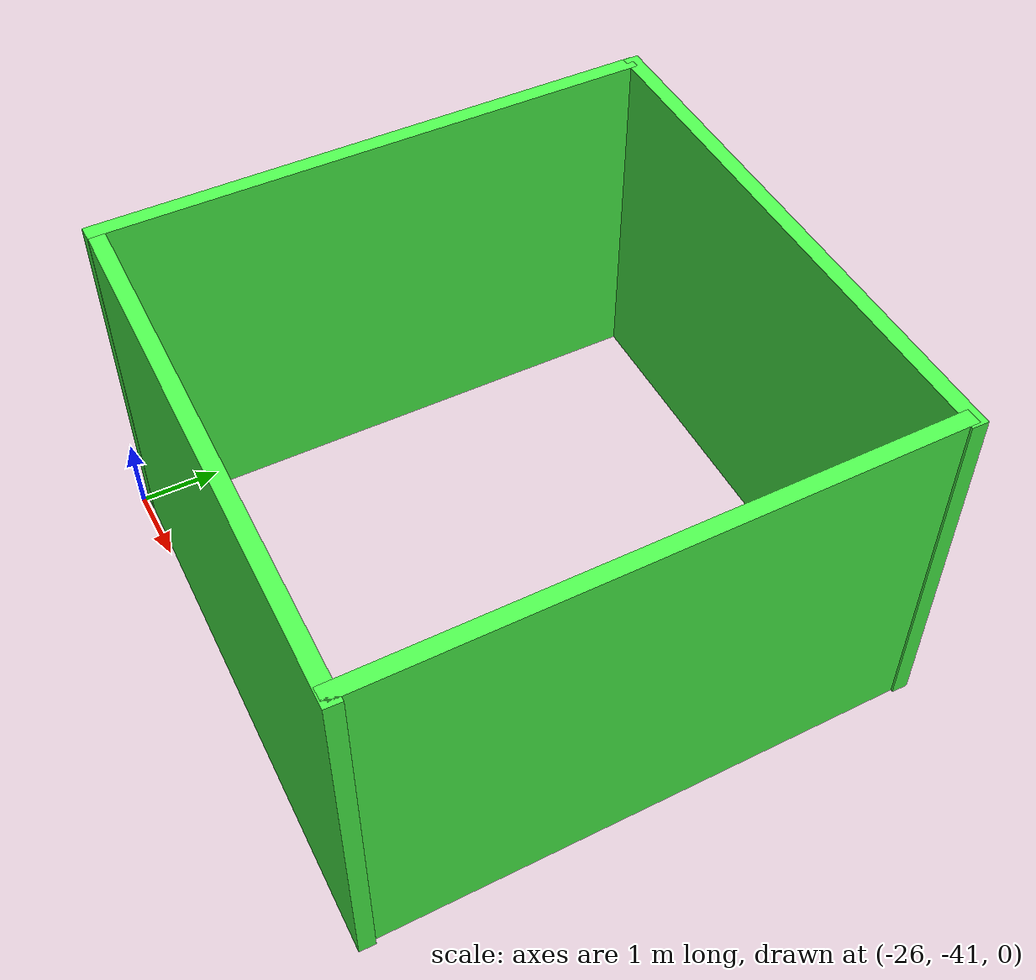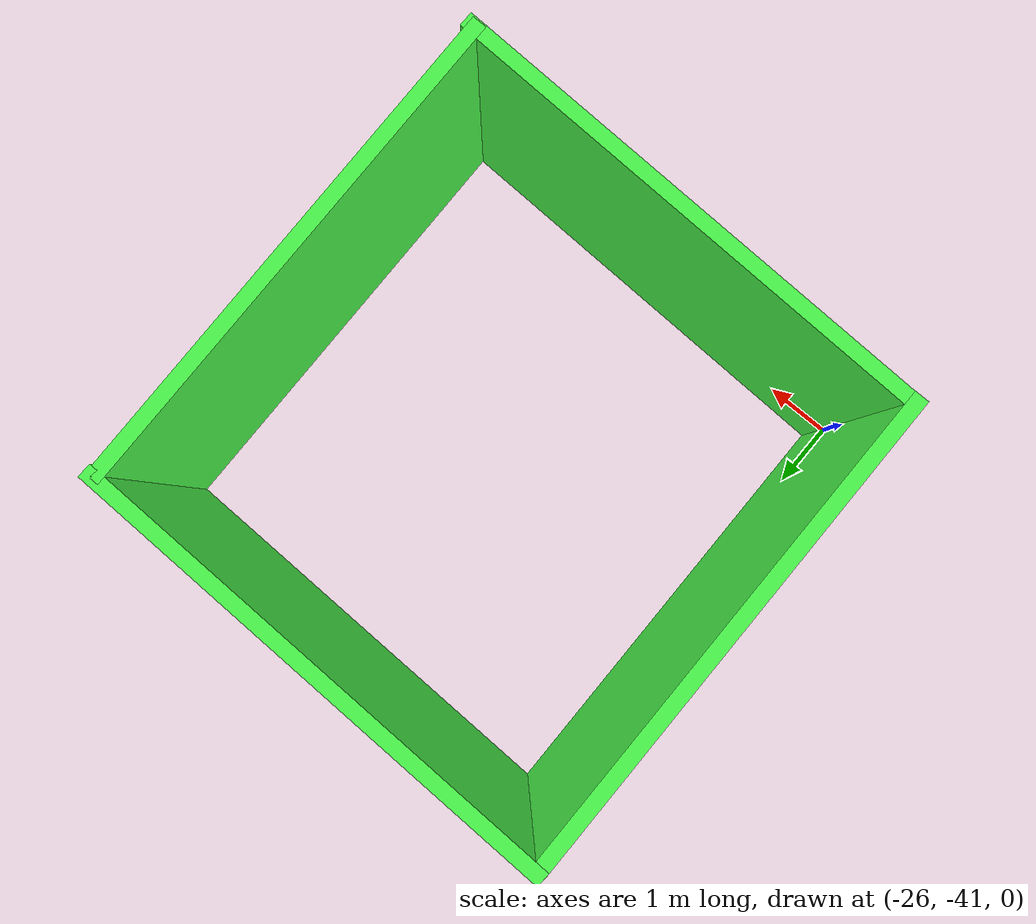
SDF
<sdf version="1.7">
 <world name="default">
  <model name="wall_clone_0">
   <pose>-22.5 -37.5 2.25 0 -0 0</pose>
   <frame name="closed_green_wall::__model__" attached_to="closed_green_wall::link_0">
    <pose relative_to="__model__">0 0 0 0 -0 0</pose>
   </frame>
   <link name="closed_green_wall::link_0">
    <inertial>
     <mass>1</mass>
     <inertia>
      <ixx>0.166667</ixx>
      <ixy>0</ixy>
      <ixz>0</ixz>
      <iyy>0.166667</iyy>
      <iyz>0</iyz>
      <izz>0.166667</izz>
     </inertia>
    </inertial>
    <pose relative_to="closed_green_wall::__model__">3.37098 -0.107634 -0 0 -0 0</pose>
    <visual name="visual">
     <geometry><box><size>0.2 7 4.5</size></box></geometry>
     <material>
      <lighting>1</lighting>
      <script><uri>file://media/materials/scripts/gazebo.material</uri><name>Gazebo/Grey</name></script>
      <shader type="vertex"><normal_map>__default__</normal_map></shader>
      <ambient>0.3 1 0.3 1</ambient>
      <diffuse>0.7 0.7 0.7 1</diffuse>
      <specular>0.01 0.01 0.01 1</specular>
      <emissive>0 0 0 1</emissive>
     </material>
    </visual>
    <collision name="collision">
     <geometry><box><size>0.2 7 4.5</size></box></geometry>
     <surface>
      <friction>
       <ode><mu>1</mu><mu2>1</mu2><fdir1>0 0 0</fdir1><slip1>0</slip1><slip2>0</slip2></ode>
       <torsional>
        <coefficient>1</coefficient>
        <patch_radius>0</patch_radius>
        <surface_radius>0</surface_radius>
        <use_patch_radius>1</use_patch_radius>
        <ode><slip>0</slip></ode>
       </torsional>
      </friction>
      <bounce><restitution_coefficient>0</restitution_coefficient><threshold>1e+06</threshold></bounce>
      <contact>
       <collide_without_contact>0</collide_without_contact>
       <collide_without_contact_bitmask>1</collide_without_contact_bitmask>
       <collide_bitmask>1</collide_bitmask>
       <ode>
        <soft_cfm>0</soft_cfm>
        <soft_erp>0.2</soft_erp>
        <kp>1e+13</kp>
        <kd>1</kd>
        <max_vel>0.01</max_vel>
        <min_depth>0</min_depth>
       </ode>
       <bullet>
        <split_impulse>1</split_impulse>
        <split_impulse_penetration_threshold>-0.01</split_impulse_penetration_threshold>
        <soft_cfm>0</soft_cfm>
        <soft_erp>0.2</soft_erp>
        <kp>1e+13</kp>
        <kd>1</kd>
       </bullet>
      </contact>
     </surface>
    </collision>
   </link>
   <link name="closed_green_wall::link_0_clone">
    <inertial>
     <mass>1</mass>
     <inertia>
      <ixx>0.166667</ixx>
      <ixy>0</ixy>
      <ixz>0</ixz>
      <iyy>0.166667</iyy>
      <iyz>0</iyz>
      <izz>0.166667</izz>
     </inertia>
    </inertial>
    <pose relative_to="closed_green_wall::__model__">0.024232 -3.42805 -0 0 0 -1.59986</pose>
    <visual name="visual">
     <geometry><box><size>0.2 7 4.5</size></box></geometry>
     <material>
      <lighting>1</lighting>
      <script><uri>file://media/materials/scripts/gazebo.material</uri><name>Gazebo/Grey</name></script>
      <shader type="vertex"><normal_map>__default__</normal_map></shader>
      <ambient>0.3 1 0.3 1</ambient>
      <diffuse>0.7 0.7 0.7 1</diffuse>
      <specular>0.01 0.01 0.01 1</specular>
      <emissive>0 0 0 1</emissive>
     </material>
    </visual>
    <collision name="collision">
     <geometry><box><size>0.2 7 4.5</size></box></geometry>
     <surface>
      <friction>
       <ode><mu>1</mu><mu2>1</mu2><fdir1>0 0 0</fdir1><slip1>0</slip1><slip2>0</slip2></ode>
       <torsional>
        <coefficient>1</coefficient>
        <patch_radius>0</patch_radius>
        <surface_radius>0</surface_radius>
        <use_patch_radius>1</use_patch_radius>
        <ode><slip>0</slip></ode>
       </torsional>
      </friction>
      <bounce><restitution_coefficient>0</restitution_coefficient><threshold>1e+06</threshold></bounce>
      <contact>
       <collide_without_contact>0</collide_without_contact>
       <collide_without_contact_bitmask>1</collide_without_contact_bitmask>
       <collide_bitmask>1</collide_bitmask>
       <ode>
        <soft_cfm>0</soft_cfm>
        <soft_erp>0.2</soft_erp>
        <kp>1e+13</kp>
        <kd>1</kd>
        <max_vel>0.01</max_vel>
        <min_depth>0</min_depth>
       </ode>
       <bullet>
        <split_impulse>1</split_impulse>
        <split_impulse_penetration_threshold>-0.01</split_impulse_penetration_threshold>
        <soft_cfm>0</soft_cfm>
        <soft_erp>0.2</soft_erp>
        <kp>1e+13</kp>
        <kd>1</kd>
       </bullet>
      </contact>
     </surface>
    </collision>
   </link>
   <link name="closed_green_wall::link_0_clone_0">
    <inertial>
     <mass>1</mass>
     <inertia>
      <ixx>0.166667</ixx>
      <ixy>0</ixy>
      <ixz>0</ixz>
      <iyy>0.166667</iyy>
      <iyz>0</iyz>
      <izz>0.166667</izz>
     </inertia>
    </inertial>
    <pose relative_to="closed_green_wall::__model__">-3.40001 0.065208 -0 0 -0 0</pose>
    <visual name="visual">
     <geometry><box><size>0.2 7 4.5</size></box></geometry>
     <material>
      <lighting>1</lighting>
      <script><uri>file://media/materials/scripts/gazebo.material</uri><name>Gazebo/Grey</name></script>
      <shader type="vertex"><normal_map>__default__</normal_map></shader>
      <ambient>0.3 1 0.3 1</ambient>
      <diffuse>0.7 0.7 0.7 1</diffuse>
      <specular>0.01 0.01 0.01 1</specular>
      <emissive>0 0 0 1</emissive>
     </material>
    </visual>
    <collision name="collision">
     <geometry><box><size>0.2 7 4.5</size></box></geometry>
     <surface>
      <friction>
       <ode><mu>1</mu><mu2>1</mu2><fdir1>0 0 0</fdir1><slip1>0</slip1><slip2>0</slip2></ode>
       <torsional>
        <coefficient>1</coefficient>
        <patch_radius>0</patch_radius>
        <surface_radius>0</surface_radius>
        <use_patch_radius>1</use_patch_radius>
        <ode><slip>0</slip></ode>
       </torsional>
      </friction>
      <bounce><restitution_coefficient>0</restitution_coefficient><threshold>1e+06</threshold></bounce>
      <contact>
       <collide_without_contact>0</collide_without_contact>
       <collide_without_contact_bitmask>1</collide_without_contact_bitmask>
       <collide_bitmask>1</collide_bitmask>
       <ode>
        <soft_cfm>0</soft_cfm>
        <soft_erp>0.2</soft_erp>
        <kp>1e+13</kp>
        <kd>1</kd>
        <max_vel>0.01</max_vel>
        <min_depth>0</min_depth>
       </ode>
       <bullet>
        <split_impulse>1</split_impulse>
        <split_impulse_penetration_threshold>-0.01</split_impulse_penetration_threshold>
        <soft_cfm>0</soft_cfm>
        <soft_erp>0.2</soft_erp>
        <kp>1e+13</kp>
        <kd>1</kd>
       </bullet>
      </contact>
     </surface>
    </collision>
   </link>
   <link name="closed_green_wall::link_0_clone_clone">
    <inertial>
     <mass>1</mass>
     <inertia>
      <ixx>0.166667</ixx>
      <ixy>0</ixy>
      <ixz>0</ixz>
      <iyy>0.166667</iyy>
      <iyz>0</iyz>
      <izz>0.166667</izz>
     </inertia>
    </inertial>
    <pose relative_to="closed_green_wall::__model__">0.004806 3.47046 -0 0 0 -1.59986</pose>
    <visual name="visual">
     <geometry><box><size>0.2 7 4.5</size></box></geometry>
     <material>
      <lighting>1</lighting>
      <script><uri>file://media/materials/scripts/gazebo.material</uri><name>Gazebo/Grey</name></script>
      <shader type="vertex"><normal_map>__default__</normal_map></shader>
      <ambient>0.3 1 0.3 1</ambient>
      <diffuse>0.7 0.7 0.7 1</diffuse>
      <specular>0.01 0.01 0.01 1</specular>
      <emissive>0 0 0 1</emissive>
     </material>
    </visual>
    <collision name="collision">
     <geometry><box><size>0.2 7 4.5</size></box></geometry>
     <surface>
      <friction>
       <ode><mu>1</mu><mu2>1</mu2><fdir1>0 0 0</fdir1><slip1>0</slip1><slip2>0</slip2></ode>
       <torsional>
        <coefficient>1</coefficient>
        <patch_radius>0</patch_radius>
        <surface_radius>0</surface_radius>
        <use_patch_radius>1</use_patch_radius>
        <ode><slip>0</slip></ode>
       </torsional>
      </friction>
      <bounce><restitution_coefficient>0</restitution_coefficient><threshold>1e+06</threshold></bounce>
      <contact>
       <collide_without_contact>0</collide_without_contact>
       <collide_without_contact_bitmask>1</collide_without_contact_bitmask>
       <collide_bitmask>1</collide_bitmask>
       <ode>
        <soft_cfm>0</soft_cfm>
        <soft_erp>0.2</soft_erp>
        <kp>1e+13</kp>
        <kd>1</kd>
        <max_vel>0.01</max_vel>
        <min_depth>0</min_depth>
       </ode>
       <bullet>
        <split_impulse>1</split_impulse>
        <split_impulse_penetration_threshold>-0.01</split_impulse_penetration_threshold>
        <soft_cfm>0</soft_cfm>
        <soft_erp>0.2</soft_erp>
        <kp>1e+13</kp>
        <kd>1</kd>
       </bullet>
      </contact>
     </surface>
    </collision>
   </link>
   <joint name="closed_green_wall::link_0_JOINT_1" type="fixed">
    <parent>closed_green_wall::link_0</parent>
    <child>closed_green_wall::link_0_clone_clone</child>
    <physics>
     <ode><limit><cfm>0</cfm><erp>0.2</erp></limit><suspension><cfm>0</cfm><erp>0.2</erp></suspension></ode>
    </physics>
   </joint>
   <joint name="closed_green_wall::link_0_clone_0_JOINT_3" type="fixed">
    <parent>closed_green_wall::link_0_clone_0</parent>
    <child>closed_green_wall::link_0_clone</child>
    <physics>
     <ode><limit><cfm>0</cfm><erp>0.2</erp></limit><suspension><cfm>0</cfm><erp>0.2</erp></suspension></ode>
    </physics>
   </joint>
   <joint name="closed_green_wall::link_0_clone_JOINT_0" type="fixed">
    <parent>closed_green_wall::link_0_clone</parent>
    <child>closed_green_wall::link_0</child>
    <physics>
     <ode><limit><cfm>0</cfm><erp>0.2</erp></limit><suspension><cfm>0</cfm><erp>0.2</erp></suspension></ode>
    </physics>
   </joint>
   <joint name="closed_green_wall::link_0_clone_clone_JOINT_2" type="fixed">
    <parent>closed_green_wall::link_0_clone_clone</parent>
    <child>closed_green_wall::link_0_clone_0</child>
    <physics>
     <ode><limit><cfm>0</cfm><erp>0.2</erp></limit><suspension><cfm>0</cfm><erp>0.2</erp></suspension></ode>
    </physics>
   </joint>
   <static>1</static>
  </model>
 </world>
</sdf>
